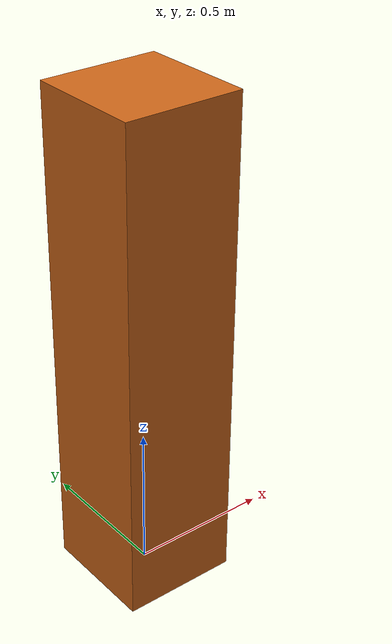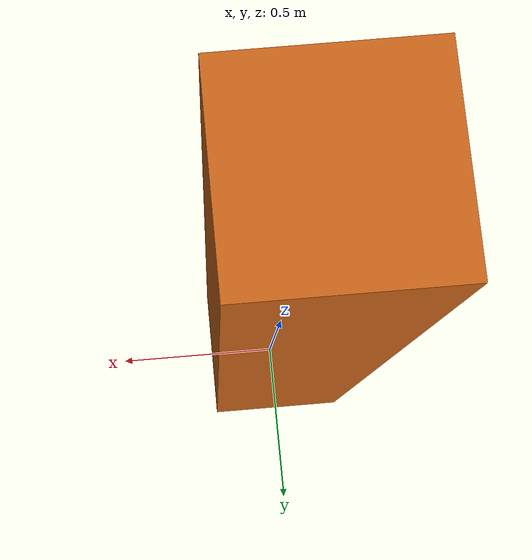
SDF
<?xml version="1.0" ?>
<sdf version="1.9">
  <model name="crossing_pedestrian">
    <link name="crossing_pedestrian_base">
      <gravity>false</gravity>
      <inertial>
        <pose>0 0 0.85 0 0 0</pose>
        <mass>70</mass>
        <inertia><ixx>17.7917</ixx><iyy>17.7917</iyy><izz>1.86667</izz>
          <ixy>0</ixy><ixz>0</ixz><iyz>0</iyz></inertia>
      </inertial>
      <visual name="body">
        <pose>0 0 0.85 0 0 0</pose>
        <geometry><box><size>0.4 0.4 1.7</size></box></geometry>
        <material><ambient>0.8 0.4 0.1 1</ambient><diffuse>0.8 0.4 0.1 1</diffuse></material>
      </visual>
    </link>

    <plugin filename="gz-sim-velocity-control-system"
            name="gz::sim::systems::VelocityControl">
      <topic>/model/crossing_pedestrian/cmd_vel</topic>
    </plugin>

    <plugin filename="gz-sim-odometry-publisher-system"
            name="gz::sim::systems::OdometryPublisher">
      <odom_frame>map</odom_frame>
      <robot_base_frame>crossing_pedestrian_base</robot_base_frame>
      <odom_topic>/model/crossing_pedestrian/pose_gt</odom_topic>
      <tf_topic>/model/crossing_pedestrian/pose_gt_tf_unused</tf_topic>
      <dimensions>3</dimensions>
      <odom_publish_frequency>50</odom_publish_frequency>
    </plugin>
  </model>
</sdf>
